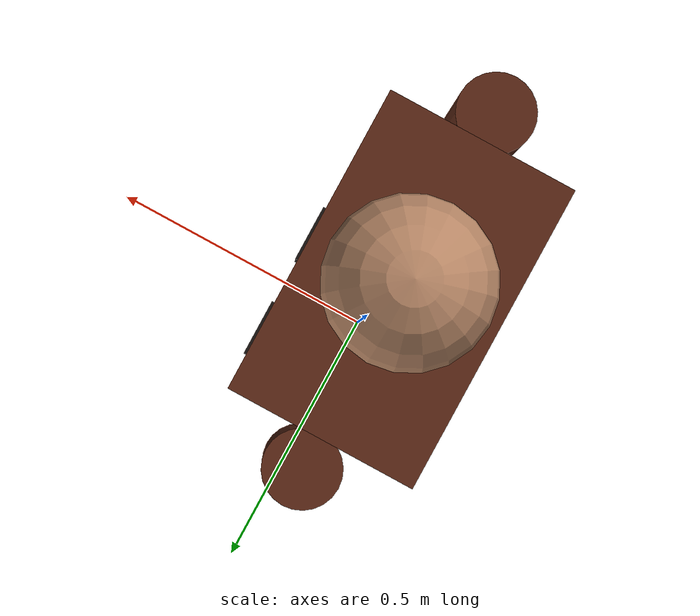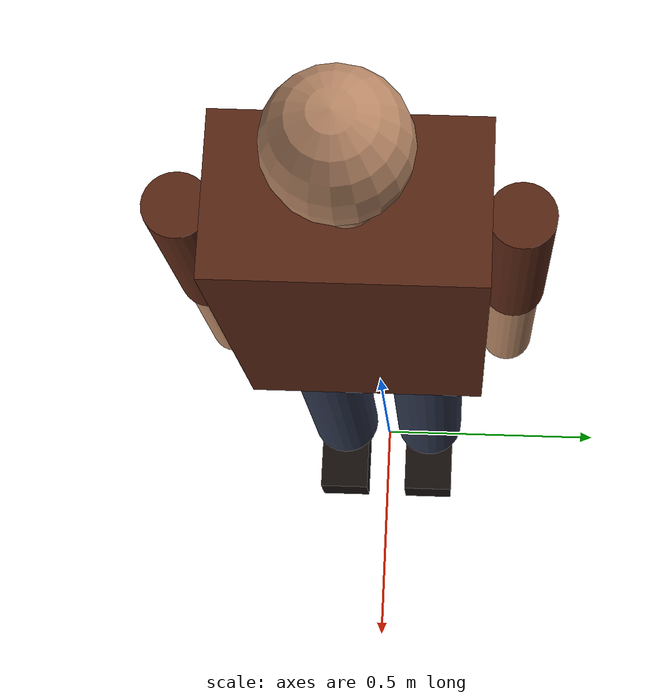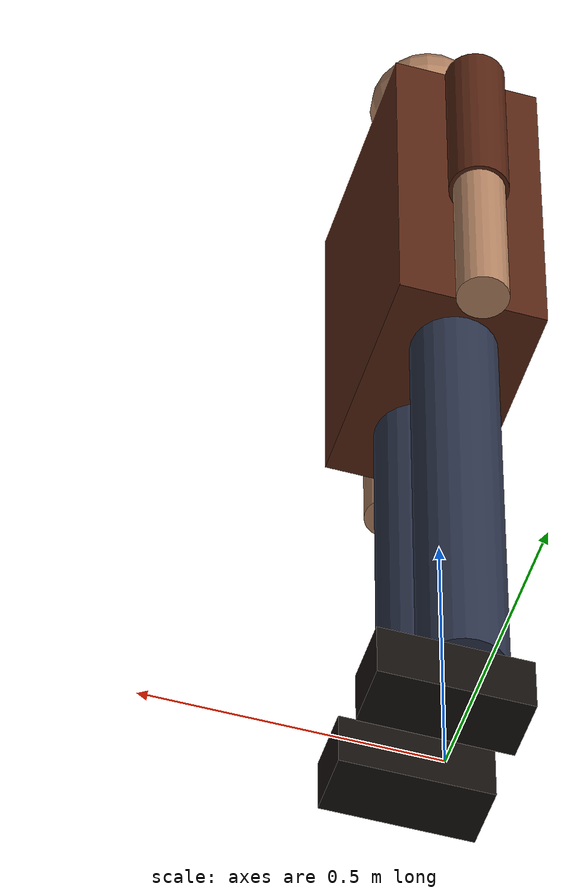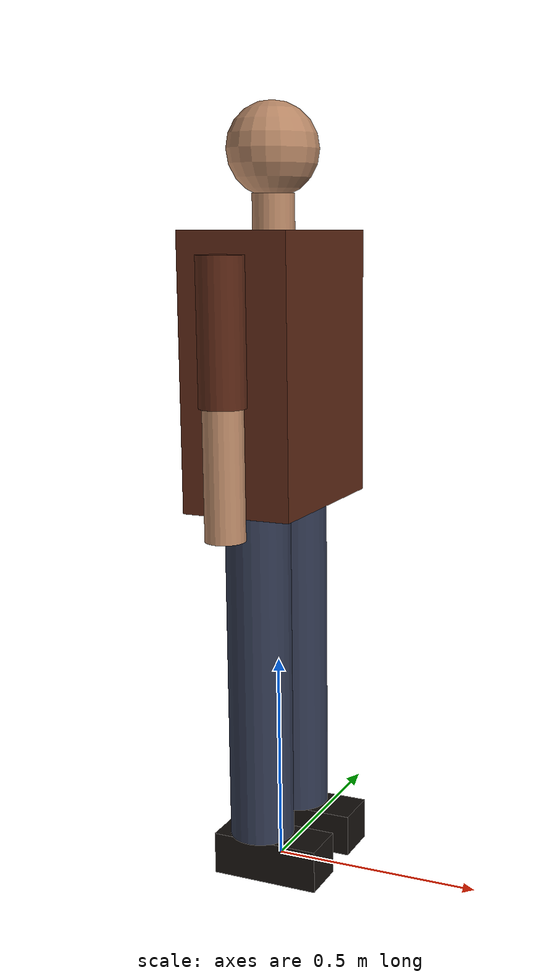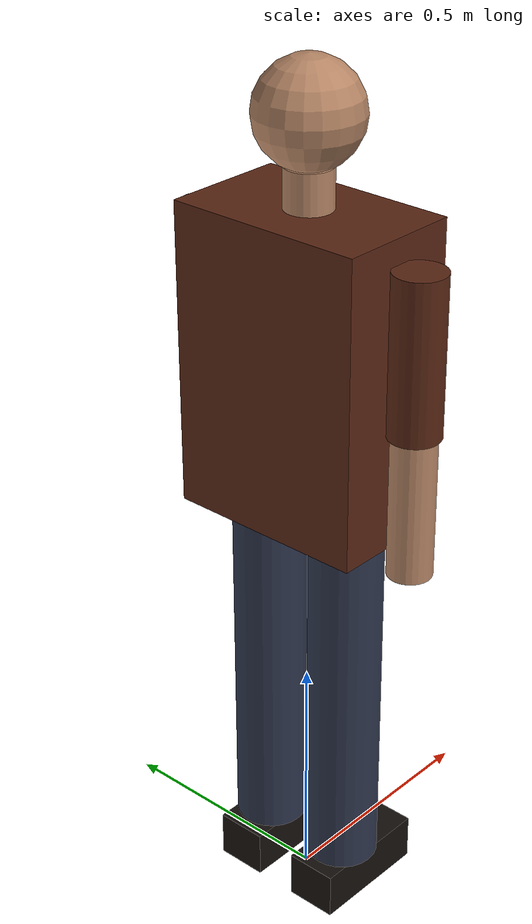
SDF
<?xml version="1.0" encoding="UTF-8"?>
<sdf version='1.9'>
  <model name='thermal_person'>
    <static>true</static>
    <pose>0 0 0 0 0 0</pose>

    <link name="body">
      <!-- One collision box for the whole torso+legs volume. Enough to stop a vehicle
           flying through the target; the limbs are visual-only. -->
      <collision name="collision">
        <pose>0 0 0.85 0 0 0</pose>
        <geometry>
          <box><size>0.30 0.50 1.70</size></box>
        </geometry>
      </collision>

      <!-- ===== BOOTS: 287.84 K, poorly perfused and in contact with cold ground ===== -->
      <visual name="boot_left">
        <pose>0.03 0.10 0.05 0 0 0</pose>
        <geometry><box><size>0.26 0.11 0.10</size></box></geometry>
        <material>
          <ambient>0.05 0.04 0.03 1</ambient>
          <diffuse>0.08 0.06 0.05 1</diffuse>
        </material>
        <plugin filename="gz-sim-thermal-system" name="gz::sim::systems::Thermal">
          <temperature>287.84</temperature>
        </plugin>
      </visual>
      <visual name="boot_right">
        <pose>0.03 -0.10 0.05 0 0 0</pose>
        <geometry><box><size>0.26 0.11 0.10</size></box></geometry>
        <material>
          <ambient>0.05 0.04 0.03 1</ambient>
          <diffuse>0.08 0.06 0.05 1</diffuse>
        </material>
        <plugin filename="gz-sim-thermal-system" name="gz::sim::systems::Thermal">
          <temperature>287.84</temperature>
        </plugin>
      </visual>

      <!-- ===== LEGS: 292.98 K, trouser surface ===== -->
      <visual name="leg_left">
        <pose>0 0.10 0.50 0 0 0</pose>
        <geometry><cylinder><radius>0.075</radius><length>0.80</length></cylinder></geometry>
        <material>
          <ambient>0.12 0.14 0.20 1</ambient>
          <diffuse>0.18 0.21 0.30 1</diffuse>
        </material>
        <plugin filename="gz-sim-thermal-system" name="gz::sim::systems::Thermal">
          <temperature>292.98</temperature>
        </plugin>
      </visual>
      <visual name="leg_right">
        <pose>0 -0.10 0.50 0 0 0</pose>
        <geometry><cylinder><radius>0.075</radius><length>0.80</length></cylinder></geometry>
        <material>
          <ambient>0.12 0.14 0.20 1</ambient>
          <diffuse>0.18 0.21 0.30 1</diffuse>
        </material>
        <plugin filename="gz-sim-thermal-system" name="gz::sim::systems::Thermal">
          <temperature>292.98</temperature>
        </plugin>
      </visual>

      <!-- ===== TORSO + UPPER ARMS: 298.12 K, jacket surface ===== -->
      <visual name="torso">
        <pose>0 0 1.20 0 0 0</pose>
        <geometry><box><size>0.26 0.42 0.62</size></box></geometry>
        <material>
          <ambient>0.20 0.09 0.05 1</ambient>
          <diffuse>0.35 0.15 0.08 1</diffuse>
        </material>
        <plugin filename="gz-sim-thermal-system" name="gz::sim::systems::Thermal">
          <temperature>298.12</temperature>
        </plugin>
      </visual>
      <visual name="upper_arm_left">
        <pose>0 0.255 1.30 0 0 0</pose>
        <geometry><cylinder><radius>0.052</radius><length>0.32</length></cylinder></geometry>
        <material>
          <ambient>0.20 0.09 0.05 1</ambient>
          <diffuse>0.35 0.15 0.08 1</diffuse>
        </material>
        <plugin filename="gz-sim-thermal-system" name="gz::sim::systems::Thermal">
          <temperature>298.12</temperature>
        </plugin>
      </visual>
      <visual name="upper_arm_right">
        <pose>0 -0.255 1.30 0 0 0</pose>
        <geometry><cylinder><radius>0.052</radius><length>0.32</length></cylinder></geometry>
        <material>
          <ambient>0.20 0.09 0.05 1</ambient>
          <diffuse>0.35 0.15 0.08 1</diffuse>
        </material>
        <plugin filename="gz-sim-thermal-system" name="gz::sim::systems::Thermal">
          <temperature>298.12</temperature>
        </plugin>
      </visual>

      <!-- ===== FOREARMS + HANDS: 303.26 K, bare skin ===== -->
      <visual name="forearm_left">
        <pose>0 0.255 1.00 0 0 0</pose>
        <geometry><cylinder><radius>0.045</radius><length>0.30</length></cylinder></geometry>
        <material>
          <ambient>0.45 0.32 0.24 1</ambient>
          <diffuse>0.72 0.53 0.40 1</diffuse>
        </material>
        <plugin filename="gz-sim-thermal-system" name="gz::sim::systems::Thermal">
          <temperature>303.26</temperature>
        </plugin>
      </visual>
      <visual name="forearm_right">
        <pose>0 -0.255 1.00 0 0 0</pose>
        <geometry><cylinder><radius>0.045</radius><length>0.30</length></cylinder></geometry>
        <material>
          <ambient>0.45 0.32 0.24 1</ambient>
          <diffuse>0.72 0.53 0.40 1</diffuse>
        </material>
        <plugin filename="gz-sim-thermal-system" name="gz::sim::systems::Thermal">
          <temperature>303.26</temperature>
        </plugin>
      </visual>

      <visual name="neck">
        <pose>0 0 1.55 0 0 0</pose>
        <geometry><cylinder><radius>0.048</radius><length>0.08</length></cylinder></geometry>
        <material>
          <ambient>0.45 0.32 0.24 1</ambient>
          <diffuse>0.72 0.53 0.40 1</diffuse>
        </material>
        <plugin filename="gz-sim-thermal-system" name="gz::sim::systems::Thermal">
          <temperature>308.40</temperature>
        </plugin>
      </visual>
      <visual name="head">
        <pose>0 0 1.685 0 0 0</pose>
        <geometry><sphere><radius>0.105</radius></sphere></geometry>
        <material>
          <ambient>0.45 0.32 0.24 1</ambient>
          <diffuse>0.72 0.53 0.40 1</diffuse>
        </material>
        <plugin filename="gz-sim-thermal-system" name="gz::sim::systems::Thermal">
          <temperature>308.40</temperature>
        </plugin>
      </visual>
    </link>

  </model>
</sdf>
